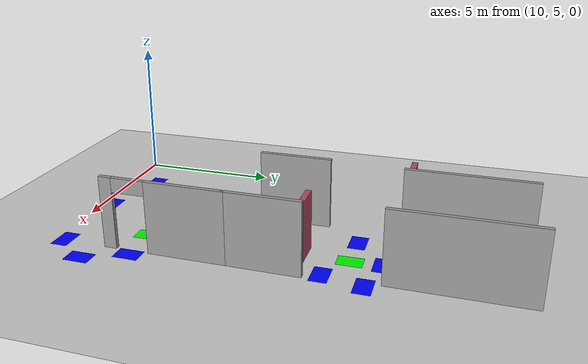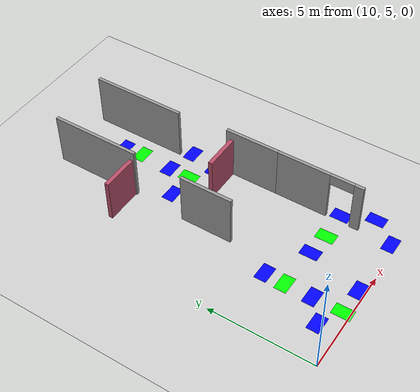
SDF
<sdf version="1.6">
 <world name="default">
  <model name="ground_plane">
   <pose>0 0 0.001 0 -0 0</pose>
   <static>1</static>
   <link name="link">
    <collision name="collision">
     <geometry><plane><normal>0 0 1</normal><size>100 100</size></plane></geometry>
     <surface><friction><ode><mu>100</mu><mu2>50</mu2></ode></friction></surface>
    </collision>
    <visual name="visual">
     <cast_shadows>0</cast_shadows>
     <geometry><plane><normal>0 0 1</normal><size>100 100</size></plane></geometry>
     <material>
      <script><uri>file://media/materials/scripts/gazebo.material</uri><name>Gazebo/Grey</name></script>
     </material>
    </visual>
   </link>
  </model>
  <model name="corridor_6">
   <link name="link">
    <pose>0 0 0.001 0 -0 0</pose>
    <inertial>
     <mass>0.0352517</mass>
     <inertia>
      <ixx>0.00099707</ixx>
      <ixy>0</ixy>
      <ixz>0</ixz>
      <iyy>0.00220147</iyy>
      <iyz>0</iyz>
      <izz>0.0031692</izz>
     </inertia>
     <pose>0 0 0.001 0 -0 0</pose>
    </inertial>
    <visual name="visual">
     <geometry><box><size>0.862743 0.578289 1e-06</size></box></geometry>
     <material>
      <script><name>Gazebo/Grey</name><uri>file://media/materials/scripts/gazebo.material</uri></script>
      <ambient>0 1 0 1</ambient>
      <diffuse>0 1 0 1</diffuse>
      <specular>0 1 0 1</specular>
      <emissive>0 1 0 1</emissive>
      <shader type="vertex"><normal_map>__default__</normal_map></shader>
     </material>
     <pose>0 0 0.001 0 -0 0</pose>
    </visual>
    <collision name="collision">
     <pose>0 0 0.001 0 -0 0</pose>
     <geometry><box><size>0.862743 0.578289 0.000477</size></box></geometry>
     <surface>
      <friction>
       <ode><mu>1</mu><mu2>1</mu2><fdir1>0 0 0</fdir1><slip1>0</slip1><slip2>0</slip2></ode>
       <torsional>
        <coefficient>1</coefficient>
        <patch_radius>0</patch_radius>
        <surface_radius>0</surface_radius>
        <use_patch_radius>1</use_patch_radius>
        <ode><slip>0</slip></ode>
       </torsional>
      </friction>
      <bounce><restitution_coefficient>0</restitution_coefficient><threshold>1e+06</threshold></bounce>
      <contact>
       <collide_without_contact>0</collide_without_contact>
       <collide_without_contact_bitmask>1</collide_without_contact_bitmask>
       <collide_bitmask>1</collide_bitmask>
       <ode>
        <soft_cfm>0</soft_cfm>
        <soft_erp>0.2</soft_erp>
        <kp>1e+13</kp>
        <kd>1</kd>
        <max_vel>0.01</max_vel>
        <min_depth>0</min_depth>
       </ode>
       <bullet>
        <split_impulse>1</split_impulse>
        <split_impulse_penetration_threshold>-0.01</split_impulse_penetration_threshold>
        <soft_cfm>0</soft_cfm>
        <soft_erp>0.2</soft_erp>
        <kp>1e+13</kp>
        <kd>1</kd>
       </bullet>
      </contact>
     </surface>
    </collision>
   </link>
   <static>1</static>
   <pose>15.721 14.7531 0 0 -0 1.58932</pose>
  </model>
  <model name="intersection_11">
   <link name="link">
    <pose>0 0 0.001 0 -0 0</pose>
    <inertial>
     <mass>0.0352517</mass>
     <inertia>
      <ixx>0.000997067</ixx>
      <ixy>0</ixy>
      <ixz>0</ixz>
      <iyy>0.00220147</iyy>
      <iyz>0</iyz>
      <izz>0.0031692</izz>
     </inertia>
     <pose>0 0 0.001 0 -0 0</pose>
    </inertial>
    <visual name="visual">
     <geometry><box><size>0.862743 0.578289 1e-06</size></box></geometry>
     <material>
      <script><name>Gazebo/Grey</name><uri>file://media/materials/scripts/gazebo.material</uri></script>
      <ambient>0 0 1 1</ambient>
      <diffuse>0 0 1 1</diffuse>
      <specular>0 0 1 1</specular>
      <emissive>0 0 1 1</emissive>
      <shader type="vertex"><normal_map>__default__</normal_map></shader>
     </material>
     <pose>0 0 0.001 0 -0 0</pose>
    </visual>
    <collision name="collision">
     <pose>0 0 0.001 0 -0 0</pose>
     <geometry><box><size>0.862743 0.578289 0.000477</size></box></geometry>
     <surface>
      <friction>
       <ode><mu>1</mu><mu2>1</mu2><fdir1>0 0 0</fdir1><slip1>0</slip1><slip2>0</slip2></ode>
       <torsional>
        <coefficient>1</coefficient>
        <patch_radius>0</patch_radius>
        <surface_radius>0</surface_radius>
        <use_patch_radius>1</use_patch_radius>
        <ode><slip>0</slip></ode>
       </torsional>
      </friction>
      <bounce><restitution_coefficient>0</restitution_coefficient><threshold>1e+06</threshold></bounce>
      <contact>
       <collide_without_contact>0</collide_without_contact>
       <collide_without_contact_bitmask>1</collide_without_contact_bitmask>
       <collide_bitmask>1</collide_bitmask>
       <ode>
        <soft_cfm>0</soft_cfm>
        <soft_erp>0.2</soft_erp>
        <kp>1e+13</kp>
        <kd>1</kd>
        <max_vel>0.01</max_vel>
        <min_depth>0</min_depth>
       </ode>
       <bullet>
        <split_impulse>1</split_impulse>
        <split_impulse_penetration_threshold>-0.01</split_impulse_penetration_threshold>
        <soft_cfm>0</soft_cfm>
        <soft_erp>0.2</soft_erp>
        <kp>1e+13</kp>
        <kd>1</kd>
       </bullet>
      </contact>
     </surface>
    </collision>
   </link>
   <static>1</static>
   <pose>15.6951 15.7809 0 0 -0 0</pose>
  </model>
  <model name="intersection_12">
   <link name="link">
    <pose>0 0 0.001 0 -0 0</pose>
    <inertial>
     <mass>0.0352517</mass>
     <inertia>
      <ixx>0.000997067</ixx>
      <ixy>0</ixy>
      <ixz>0</ixz>
      <iyy>0.00220147</iyy>
      <iyz>0</iyz>
      <izz>0.0031692</izz>
     </inertia>
     <pose>0 0 0.001 0 -0 0</pose>
    </inertial>
    <visual name="visual">
     <geometry><box><size>0.862743 0.578289 1e-06</size></box></geometry>
     <material>
      <script><name>Gazebo/Grey</name><uri>file://media/materials/scripts/gazebo.material</uri></script>
      <ambient>0 0 1 1</ambient>
      <diffuse>0 0 1 1</diffuse>
      <specular>0 0 1 1</specular>
      <emissive>0 0 1 1</emissive>
      <shader type="vertex"><normal_map>__default__</normal_map></shader>
     </material>
     <pose>0 0 0.001 0 -0 0</pose>
    </visual>
    <collision name="collision">
     <pose>0 0 0.001 0 -0 0</pose>
     <geometry><box><size>0.862743 0.578289 0.000477</size></box></geometry>
     <surface>
      <friction>
       <ode><mu>1</mu><mu2>1</mu2><fdir1>0 0 0</fdir1><slip1>0</slip1><slip2>0</slip2></ode>
       <torsional>
        <coefficient>1</coefficient>
        <patch_radius>0</patch_radius>
        <surface_radius>0</surface_radius>
        <use_patch_radius>1</use_patch_radius>
        <ode><slip>0</slip></ode>
       </torsional>
      </friction>
      <bounce><restitution_coefficient>0</restitution_coefficient><threshold>1e+06</threshold></bounce>
      <contact>
       <collide_without_contact>0</collide_without_contact>
       <collide_without_contact_bitmask>1</collide_without_contact_bitmask>
       <collide_bitmask>1</collide_bitmask>
       <ode>
        <soft_cfm>0</soft_cfm>
        <soft_erp>0.2</soft_erp>
        <kp>1e+13</kp>
        <kd>1</kd>
        <max_vel>0.01</max_vel>
        <min_depth>0</min_depth>
       </ode>
       <bullet>
        <split_impulse>1</split_impulse>
        <split_impulse_penetration_threshold>-0.01</split_impulse_penetration_threshold>
        <soft_cfm>0</soft_cfm>
        <soft_erp>0.2</soft_erp>
        <kp>1e+13</kp>
        <kd>1</kd>
       </bullet>
      </contact>
     </surface>
    </collision>
   </link>
   <static>1</static>
   <pose>17.3294 7.83092 0 0 -0 1.57418</pose>
  </model>
  <model name="intersection_14">
   <link name="link">
    <pose>0 0 0.001 0 -0 0</pose>
    <inertial>
     <mass>0.0352517</mass>
     <inertia>
      <ixx>0.000997067</ixx>
      <ixy>0</ixy>
      <ixz>0</ixz>
      <iyy>0.00220147</iyy>
      <iyz>0</iyz>
      <izz>0.0031692</izz>
     </inertia>
     <pose>0 0 0.001 0 -0 0</pose>
    </inertial>
    <visual name="visual">
     <geometry><box><size>0.862743 0.578289 1e-06</size></box></geometry>
     <material>
      <script><name>Gazebo/Grey</name><uri>file://media/materials/scripts/gazebo.material</uri></script>
      <ambient>0 0 1 1</ambient>
      <diffuse>0 0 1 1</diffuse>
      <specular>0 0 1 1</specular>
      <emissive>0 0 1 1</emissive>
      <shader type="vertex"><normal_map>__default__</normal_map></shader>
     </material>
     <pose>0 0 0.001 0 -0 0</pose>
    </visual>
    <collision name="collision">
     <pose>0 0 0.001 0 -0 0</pose>
     <geometry><box><size>0.862743 0.578289 0.000477</size></box></geometry>
     <surface>
      <friction>
       <ode><mu>1</mu><mu2>1</mu2><fdir1>0 0 0</fdir1><slip1>0</slip1><slip2>0</slip2></ode>
       <torsional>
        <coefficient>1</coefficient>
        <patch_radius>0</patch_radius>
        <surface_radius>0</surface_radius>
        <use_patch_radius>1</use_patch_radius>
        <ode><slip>0</slip></ode>
       </torsional>
      </friction>
      <bounce><restitution_coefficient>0</restitution_coefficient><threshold>1e+06</threshold></bounce>
      <contact>
       <collide_without_contact>0</collide_without_contact>
       <collide_without_contact_bitmask>1</collide_without_contact_bitmask>
       <collide_bitmask>1</collide_bitmask>
       <ode>
        <soft_cfm>0</soft_cfm>
        <soft_erp>0.2</soft_erp>
        <kp>1e+13</kp>
        <kd>1</kd>
        <max_vel>0.01</max_vel>
        <min_depth>0</min_depth>
       </ode>
       <bullet>
        <split_impulse>1</split_impulse>
        <split_impulse_penetration_threshold>-0.01</split_impulse_penetration_threshold>
        <soft_cfm>0</soft_cfm>
        <soft_erp>0.2</soft_erp>
        <kp>1e+13</kp>
        <kd>1</kd>
       </bullet>
      </contact>
     </surface>
    </collision>
   </link>
   <static>1</static>
   <pose>12.7859 6.73289 0 0 -0 0</pose>
  </model>
  <model name="corridor_8">
   <link name="link">
    <pose>0 0 0.001 0 -0 0</pose>
    <inertial>
     <mass>0.0352517</mass>
     <inertia>
      <ixx>0.00099707</ixx>
      <ixy>0</ixy>
      <ixz>0</ixz>
      <iyy>0.00220147</iyy>
      <iyz>0</iyz>
      <izz>0.0031692</izz>
     </inertia>
     <pose>0 0 0.001 0 -0 0</pose>
    </inertial>
    <visual name="visual">
     <geometry><box><size>0.862743 0.578289 1e-06</size></box></geometry>
     <material>
      <script><name>Gazebo/Grey</name><uri>file://media/materials/scripts/gazebo.material</uri></script>
      <ambient>0 1 0 1</ambient>
      <diffuse>0 1 0 1</diffuse>
      <specular>0 1 0 1</specular>
      <emissive>0 1 0 1</emissive>
      <shader type="vertex"><normal_map>__default__</normal_map></shader>
     </material>
     <pose>0 0 0.001 0 -0 0</pose>
    </visual>
    <collision name="collision">
     <pose>0 0 0.001 0 -0 0</pose>
     <geometry><box><size>0.862743 0.578289 0.000477</size></box></geometry>
     <surface>
      <friction>
       <ode><mu>1</mu><mu2>1</mu2><fdir1>0 0 0</fdir1><slip1>0</slip1><slip2>0</slip2></ode>
       <torsional>
        <coefficient>1</coefficient>
        <patch_radius>0</patch_radius>
        <surface_radius>0</surface_radius>
        <use_patch_radius>1</use_patch_radius>
        <ode><slip>0</slip></ode>
       </torsional>
      </friction>
      <bounce><restitution_coefficient>0</restitution_coefficient><threshold>1e+06</threshold></bounce>
      <contact>
       <collide_without_contact>0</collide_without_contact>
       <collide_without_contact_bitmask>1</collide_without_contact_bitmask>
       <collide_bitmask>1</collide_bitmask>
       <ode>
        <soft_cfm>0</soft_cfm>
        <soft_erp>0.2</soft_erp>
        <kp>1e+13</kp>
        <kd>1</kd>
        <max_vel>0.01</max_vel>
        <min_depth>0</min_depth>
       </ode>
       <bullet>
        <split_impulse>1</split_impulse>
        <split_impulse_penetration_threshold>-0.01</split_impulse_penetration_threshold>
        <soft_cfm>0</soft_cfm>
        <soft_erp>0.2</soft_erp>
        <kp>1e+13</kp>
        <kd>1</kd>
       </bullet>
      </contact>
     </surface>
    </collision>
   </link>
   <static>1</static>
   <pose>12.7756 5.34283 0 0 -0 1.57783</pose>
  </model>
  <model name="intersection_7">
   <link name="link">
    <pose>0 0 0.001 0 -0 0</pose>
    <inertial>
     <mass>0.0352517</mass>
     <inertia>
      <ixx>0.000997067</ixx>
      <ixy>0</ixy>
      <ixz>0</ixz>
      <iyy>0.00220147</iyy>
      <iyz>0</iyz>
      <izz>0.0031692</izz>
     </inertia>
     <pose>0 0 0.001 0 -0 0</pose>
    </inertial>
    <visual name="visual">
     <geometry><box><size>0.862743 0.578289 1e-06</size></box></geometry>
     <material>
      <script><name>Gazebo/Grey</name><uri>file://media/materials/scripts/gazebo.material</uri></script>
      <ambient>0 0 1 1</ambient>
      <diffuse>0 0 1 1</diffuse>
      <specular>0 0 1 1</specular>
      <emissive>0 0 1 1</emissive>
      <shader type="vertex"><normal_map>__default__</normal_map></shader>
     </material>
     <pose>0 0 0.001 0 -0 0</pose>
    </visual>
    <collision name="collision">
     <pose>0 0 0.001 0 -0 0</pose>
     <geometry><box><size>0.862743 0.578289 0.000477</size></box></geometry>
     <surface>
      <friction>
       <ode><mu>1</mu><mu2>1</mu2><fdir1>0 0 0</fdir1><slip1>0</slip1><slip2>0</slip2></ode>
       <torsional>
        <coefficient>1</coefficient>
        <patch_radius>0</patch_radius>
        <surface_radius>0</surface_radius>
        <use_patch_radius>1</use_patch_radius>
        <ode><slip>0</slip></ode>
       </torsional>
      </friction>
      <bounce><restitution_coefficient>0</restitution_coefficient><threshold>1e+06</threshold></bounce>
      <contact>
       <collide_without_contact>0</collide_without_contact>
       <collide_without_contact_bitmask>1</collide_without_contact_bitmask>
       <collide_bitmask>1</collide_bitmask>
       <ode>
        <soft_cfm>0</soft_cfm>
        <soft_erp>0.2</soft_erp>
        <kp>1e+13</kp>
        <kd>1</kd>
        <max_vel>0.01</max_vel>
        <min_depth>0</min_depth>
       </ode>
       <bullet>
        <split_impulse>1</split_impulse>
        <split_impulse_penetration_threshold>-0.01</split_impulse_penetration_threshold>
        <soft_cfm>0</soft_cfm>
        <soft_erp>0.2</soft_erp>
        <kp>1e+13</kp>
        <kd>1</kd>
       </bullet>
      </contact>
     </surface>
    </collision>
   </link>
   <static>1</static>
   <pose>14.0769 5.3223 0 0 -0 0</pose>
  </model>
  <model name="intersection_47">
   <link name="link">
    <pose>0 0 0.001 0 -0 0</pose>
    <inertial>
     <mass>0.0352517</mass>
     <inertia>
      <ixx>0.000997067</ixx>
      <ixy>0</ixy>
      <ixz>0</ixz>
      <iyy>0.00220147</iyy>
      <iyz>0</iyz>
      <izz>0.0031692</izz>
     </inertia>
     <pose>0 0 0.001 0 -0 0</pose>
    </inertial>
    <visual name="visual">
     <geometry><box><size>0.862743 0.578289 1e-06</size></box></geometry>
     <material>
      <script><name>Gazebo/Grey</name><uri>file://media/materials/scripts/gazebo.material</uri></script>
      <ambient>0 0 1 1</ambient>
      <diffuse>0 0 1 1</diffuse>
      <specular>0 0 1 1</specular>
      <emissive>0 0 1 1</emissive>
      <shader type="vertex"><normal_map>__default__</normal_map></shader>
     </material>
     <pose>0 0 0.001 0 -0 0</pose>
    </visual>
    <collision name="collision">
     <pose>0 0 0.001 0 -0 0</pose>
     <geometry><box><size>0.862743 0.578289 0.000477</size></box></geometry>
     <surface>
      <friction>
       <ode><mu>1</mu><mu2>1</mu2><fdir1>0 0 0</fdir1><slip1>0</slip1><slip2>0</slip2></ode>
       <torsional>
        <coefficient>1</coefficient>
        <patch_radius>0</patch_radius>
        <surface_radius>0</surface_radius>
        <use_patch_radius>1</use_patch_radius>
        <ode><slip>0</slip></ode>
       </torsional>
      </friction>
      <bounce><restitution_coefficient>0</restitution_coefficient><threshold>1e+06</threshold></bounce>
      <contact>
       <collide_without_contact>0</collide_without_contact>
       <collide_without_contact_bitmask>1</collide_without_contact_bitmask>
       <collide_bitmask>1</collide_bitmask>
       <ode>
        <soft_cfm>0</soft_cfm>
        <soft_erp>0.2</soft_erp>
        <kp>1e+13</kp>
        <kd>1</kd>
        <max_vel>0.01</max_vel>
        <min_depth>0</min_depth>
       </ode>
       <bullet>
        <split_impulse>1</split_impulse>
        <split_impulse_penetration_threshold>-0.01</split_impulse_penetration_threshold>
        <soft_cfm>0</soft_cfm>
        <soft_erp>0.2</soft_erp>
        <kp>1e+13</kp>
        <kd>1</kd>
       </bullet>
      </contact>
     </surface>
    </collision>
   </link>
   <static>1</static>
   <pose>16.999 5.2849 0 0 -0 0</pose>
  </model>
  <model name="intersection_48">
   <link name="link">
    <pose>0 0 0.001 0 -0 0</pose>
    <inertial>
     <mass>0.0352517</mass>
     <inertia>
      <ixx>0.000997067</ixx>
      <ixy>0</ixy>
      <ixz>0</ixz>
      <iyy>0.00220147</iyy>
      <iyz>0</iyz>
      <izz>0.0031692</izz>
     </inertia>
     <pose>0 0 0.001 0 -0 0</pose>
    </inertial>
    <visual name="visual">
     <geometry><box><size>0.862743 0.578289 1e-06</size></box></geometry>
     <material>
      <script><name>Gazebo/Grey</name><uri>file://media/materials/scripts/gazebo.material</uri></script>
      <ambient>0 0 1 1</ambient>
      <diffuse>0 0 1 1</diffuse>
      <specular>0 0 1 1</specular>
      <emissive>0 0 1 1</emissive>
      <shader type="vertex"><normal_map>__default__</normal_map></shader>
     </material>
     <pose>0 0 0.001 0 -0 0</pose>
    </visual>
    <collision name="collision">
     <pose>0 0 0.001 0 -0 0</pose>
     <geometry><box><size>0.862743 0.578289 0.000477</size></box></geometry>
     <surface>
      <friction>
       <ode><mu>1</mu><mu2>1</mu2><fdir1>0 0 0</fdir1><slip1>0</slip1><slip2>0</slip2></ode>
       <torsional>
        <coefficient>1</coefficient>
        <patch_radius>0</patch_radius>
        <surface_radius>0</surface_radius>
        <use_patch_radius>1</use_patch_radius>
        <ode><slip>0</slip></ode>
       </torsional>
      </friction>
      <bounce><restitution_coefficient>0</restitution_coefficient><threshold>1e+06</threshold></bounce>
      <contact>
       <collide_without_contact>0</collide_without_contact>
       <collide_without_contact_bitmask>1</collide_without_contact_bitmask>
       <collide_bitmask>1</collide_bitmask>
       <ode>
        <soft_cfm>0</soft_cfm>
        <soft_erp>0.2</soft_erp>
        <kp>1e+13</kp>
        <kd>1</kd>
        <max_vel>0.01</max_vel>
        <min_depth>0</min_depth>
       </ode>
       <bullet>
        <split_impulse>1</split_impulse>
        <split_impulse_penetration_threshold>-0.01</split_impulse_penetration_threshold>
        <soft_cfm>0</soft_cfm>
        <soft_erp>0.2</soft_erp>
        <kp>1e+13</kp>
        <kd>1</kd>
       </bullet>
      </contact>
     </surface>
    </collision>
   </link>
   <static>1</static>
   <pose>16.7622 14.0505 0 0 -0 0</pose>
  </model>
  <model name="intersection_49">
   <link name="link">
    <pose>0 0 0.001 0 -0 0</pose>
    <inertial>
     <mass>0.0352517</mass>
     <inertia>
      <ixx>0.000997067</ixx>
      <ixy>0</ixy>
      <ixz>0</ixz>
      <iyy>0.00220147</iyy>
      <iyz>0</iyz>
      <izz>0.0031692</izz>
     </inertia>
     <pose>0 0 0.001 0 -0 0</pose>
    </inertial>
    <visual name="visual">
     <geometry><box><size>0.862743 0.578289 1e-06</size></box></geometry>
     <material>
      <script><name>Gazebo/Grey</name><uri>file://media/materials/scripts/gazebo.material</uri></script>
      <ambient>0 0 1 1</ambient>
      <diffuse>0 0 1 1</diffuse>
      <specular>0 0 1 1</specular>
      <emissive>0 0 1 1</emissive>
      <shader type="vertex"><normal_map>__default__</normal_map></shader>
     </material>
     <pose>0 0 0.001 0 -0 0</pose>
    </visual>
    <collision name="collision">
     <pose>0 0 0.001 0 -0 0</pose>
     <geometry><box><size>0.862743 0.578289 0.000477</size></box></geometry>
     <surface>
      <friction>
       <ode><mu>1</mu><mu2>1</mu2><fdir1>0 0 0</fdir1><slip1>0</slip1><slip2>0</slip2></ode>
       <torsional>
        <coefficient>1</coefficient>
        <patch_radius>0</patch_radius>
        <surface_radius>0</surface_radius>
        <use_patch_radius>1</use_patch_radius>
        <ode><slip>0</slip></ode>
       </torsional>
      </friction>
      <bounce><restitution_coefficient>0</restitution_coefficient><threshold>1e+06</threshold></bounce>
      <contact>
       <collide_without_contact>0</collide_without_contact>
       <collide_without_contact_bitmask>1</collide_without_contact_bitmask>
       <collide_bitmask>1</collide_bitmask>
       <ode>
        <soft_cfm>0</soft_cfm>
        <soft_erp>0.2</soft_erp>
        <kp>1e+13</kp>
        <kd>1</kd>
        <max_vel>0.01</max_vel>
        <min_depth>0</min_depth>
       </ode>
       <bullet>
        <split_impulse>1</split_impulse>
        <split_impulse_penetration_threshold>-0.01</split_impulse_penetration_threshold>
        <soft_cfm>0</soft_cfm>
        <soft_erp>0.2</soft_erp>
        <kp>1e+13</kp>
        <kd>1</kd>
       </bullet>
      </contact>
     </surface>
    </collision>
   </link>
   <static>1</static>
   <pose>14.4469 14.7691 0 0 -0 0</pose>
  </model>
  <model name="Se1_cut">
   <pose>3.62364 13.9276 0 0 -0 0</pose>
   <link name="Wall_13">
    <pose>13.3997 -4.96918 0 0 0 -1.5708</pose>
    <visual name="Wall_13_Visual_0">
     <pose>-0.786431 0 1.25 0 -0 0</pose>
     <geometry><box><size>2.67714 0.15 2.5</size></box></geometry>
     <material>
      <script><uri>file://media/materials/scripts/gazebo.material</uri><name>Gazebo/Grey</name></script>
      <ambient>1 1 1 1</ambient>
     </material>
    </visual>
    <collision name="Wall_13_Collision_0">
     <geometry><box><size>2.67714 0.15 2.5</size></box></geometry>
     <pose>-0.786431 0 1.25 0 -0 0</pose>
    </collision>
    <visual name="Wall_13_Visual_1">
     <pose>1.90422 0 1.25 0 -0 0</pose>
     <geometry><box><size>0.441555 0.15 2.5</size></box></geometry>
     <material>
      <script><uri>file://media/materials/scripts/gazebo.material</uri><name>Gazebo/Grey</name></script>
      <ambient>1 1 1 1</ambient>
     </material>
    </visual>
    <collision name="Wall_13_Collision_1">
     <geometry><box><size>0.441555 0.15 2.5</size></box></geometry>
     <pose>1.90422 0 1.25 0 -0 0</pose>
    </collision>
    <visual name="Wall_13_Visual_2">
     <pose>1.11779 0 2.25 0 -0 0</pose>
     <geometry><box><size>1.13131 0.15 0.5</size></box></geometry>
     <material>
      <script><uri>file://media/materials/scripts/gazebo.material</uri><name>Gazebo/Grey</name></script>
      <ambient>1 1 1 1</ambient>
     </material>
    </visual>
    <collision name="Wall_13_Collision_2">
     <geometry><box><size>1.13131 0.15 0.5</size></box></geometry>
     <pose>1.11779 0 2.25 0 -0 0</pose>
    </collision>
   </link>
   <link name="Wall_16">
    <collision name="Wall_16_Collision">
     <geometry><box><size>2.61111 0.15 2.5</size></box></geometry>
     <pose>0 0 1.25 0 -0 0</pose>
    </collision>
    <visual name="Wall_16_Visual">
     <pose>0 0 1.25 0 -0 0</pose>
     <geometry><box><size>2.61111 0.15 2.5</size></box></geometry>
     <material>
      <script><uri>file://media/materials/scripts/gazebo.material</uri><name>Gazebo/Grey</name></script>
      <ambient>1 1 1 1</ambient>
     </material>
    </visual>
    <pose>13.3997 -1.68863 0 0 0 -1.5708</pose>
   </link>
   <link name="Wall_41">
    <collision name="Wall_41_Collision">
     <geometry><box><size>2.5 0.15 2.5</size></box></geometry>
     <pose>0 0 1.25 0 -0 0</pose>
    </collision>
    <visual name="Wall_41_Visual">
     <pose>0 0 1.25 0 -0 0</pose>
     <geometry><box><size>2.5 0.15 2.5</size></box></geometry>
     <material>
      <script><uri>file://media/materials/scripts/gazebo.material</uri><name>Gazebo/Grey</name></script>
      <ambient>1 1 1 1</ambient>
     </material>
    </visual>
    <pose>9.879 -1.60352 0 0 0 -1.5708</pose>
   </link>
   <link name="Wall_47">
    <collision name="Wall_47_Collision">
     <geometry><box><size>4.5 0.15 2.5</size></box></geometry>
     <pose>0 0 1.25 0 -0 0</pose>
    </collision>
    <visual name="Wall_47_Visual">
     <pose>0 0 1.25 0 -0 0</pose>
     <geometry><box><size>4.5 0.15 2.5</size></box></geometry>
     <material>
      <script><uri>file://media/materials/scripts/gazebo.material</uri><name>Gazebo/Grey</name></script>
      <ambient>1 1 1 1</ambient>
     </material>
    </visual>
    <pose>13.1471 4.23874 0 0 -0 1.5708</pose>
   </link>
   <link name="Wall_63">
    <collision name="Wall_63_Collision">
     <geometry><box><size>4.25 0.15 2.5</size></box></geometry>
     <pose>0 0 1.25 0 -0 0</pose>
    </collision>
    <visual name="Wall_63_Visual">
     <pose>0 0 1.25 0 -0 0</pose>
     <geometry><box><size>4.25 0.15 2.5</size></box></geometry>
     <material>
      <script><uri>file://media/materials/scripts/gazebo.material</uri><name>Gazebo/Grey</name></script>
      <ambient>1 1 1 1</ambient>
     </material>
    </visual>
    <pose>9.99193 4.24479 0 0 0 -1.5708</pose>
   </link>
   <static>1</static>
  </model>
  <model name="doorOutside_5_clone">
   <link name="link">
    <pose>0.155539 -0.366282 0.216958 0 -0 0</pose>
    <inertial>
     <mass>2.13199</mass>
     <inertia>
      <ixx>0.452656</ixx>
      <ixy>0</ixy>
      <ixz>0</ixz>
      <iyy>0.796738</iyy>
      <iyz>0</iyz>
      <izz>0.699414</izz>
     </inertia>
    </inertial>
    <visual name="visual">
     <geometry><box><size>1.71368 0.198843 2.05986</size></box></geometry>
     <material>
      <script><name>Gazebo/Grey</name><uri>file://media/materials/scripts/gazebo.material</uri></script>
      <ambient>0.7 0.3 0.4 1</ambient>
      <diffuse>0.7 0.7 0.7 1</diffuse>
      <specular>0.01 0.01 0.01 1</specular>
      <emissive>0 0 0 1</emissive>
      <shader type="vertex"><normal_map>__default__</normal_map></shader>
      <lighting>0</lighting>
     </material>
    </visual>
    <collision name="collision">
     <geometry><box><size>1.71368 0.198843 2.05986</size></box></geometry>
     <surface>
      <friction>
       <ode><mu>1</mu><mu2>1</mu2><fdir1>0 0 0</fdir1><slip1>0</slip1><slip2>0</slip2></ode>
       <torsional>
        <coefficient>1</coefficient>
        <patch_radius>0</patch_radius>
        <surface_radius>0</surface_radius>
        <use_patch_radius>1</use_patch_radius>
        <ode><slip>0</slip></ode>
       </torsional>
      </friction>
      <bounce><restitution_coefficient>0</restitution_coefficient><threshold>1e+06</threshold></bounce>
      <contact>
       <collide_without_contact>0</collide_without_contact>
       <collide_without_contact_bitmask>1</collide_without_contact_bitmask>
       <collide_bitmask>1</collide_bitmask>
       <ode>
        <soft_cfm>0</soft_cfm>
        <soft_erp>0.2</soft_erp>
        <kp>1e+13</kp>
        <kd>1</kd>
        <max_vel>0.01</max_vel>
        <min_depth>0</min_depth>
       </ode>
       <bullet>
        <split_impulse>1</split_impulse>
        <split_impulse_penetration_threshold>-0.01</split_impulse_penetration_threshold>
        <soft_cfm>0</soft_cfm>
        <soft_erp>0.2</soft_erp>
        <kp>1e+13</kp>
        <kd>1</kd>
       </bullet>
      </contact>
     </surface>
    </collision>
   </link>
   <static>0</static>
   <pose>12.5279 16.5778 0.812969 0 5e-06 9.7e-05</pose>
  </model>
  <model name="doorOutside_5_clone_0">
   <link name="link">
    <pose>0.155539 -0.366282 0.216958 0 -0 0</pose>
    <inertial>
     <mass>2.13199</mass>
     <inertia>
      <ixx>0.452656</ixx>
      <ixy>0</ixy>
      <ixz>0</ixz>
      <iyy>0.796738</iyy>
      <iyz>0</iyz>
      <izz>0.699414</izz>
     </inertia>
    </inertial>
    <visual name="visual">
     <geometry><box><size>1.71368 0.198843 2.05986</size></box></geometry>
     <material>
      <script><name>Gazebo/Grey</name><uri>file://media/materials/scripts/gazebo.material</uri></script>
      <ambient>0.7 0.3 0.4 1</ambient>
      <diffuse>0.7 0.7 0.7 1</diffuse>
      <specular>0.01 0.01 0.01 1</specular>
      <emissive>0 0 0 1</emissive>
      <shader type="vertex"><normal_map>__default__</normal_map></shader>
      <lighting>0</lighting>
     </material>
    </visual>
    <collision name="collision">
     <geometry><box><size>1.71368 0.198843 2.05986</size></box></geometry>
     <surface>
      <friction>
       <ode><mu>1</mu><mu2>1</mu2><fdir1>0 0 0</fdir1><slip1>0</slip1><slip2>0</slip2></ode>
       <torsional>
        <coefficient>1</coefficient>
        <patch_radius>0</patch_radius>
        <surface_radius>0</surface_radius>
        <use_patch_radius>1</use_patch_radius>
        <ode><slip>0</slip></ode>
       </torsional>
      </friction>
      <bounce><restitution_coefficient>0</restitution_coefficient><threshold>1e+06</threshold></bounce>
      <contact>
       <collide_without_contact>0</collide_without_contact>
       <collide_without_contact_bitmask>1</collide_without_contact_bitmask>
       <collide_bitmask>1</collide_bitmask>
       <ode>
        <soft_cfm>0</soft_cfm>
        <soft_erp>0.2</soft_erp>
        <kp>1e+13</kp>
        <kd>1</kd>
        <max_vel>0.01</max_vel>
        <min_depth>0</min_depth>
       </ode>
       <bullet>
        <split_impulse>1</split_impulse>
        <split_impulse_penetration_threshold>-0.01</split_impulse_penetration_threshold>
        <soft_cfm>0</soft_cfm>
        <soft_erp>0.2</soft_erp>
        <kp>1e+13</kp>
        <kd>1</kd>
       </bullet>
      </contact>
     </surface>
    </collision>
   </link>
   <static>0</static>
   <pose>15.9358 13.6208 0.812972 0 -0 0.000321</pose>
  </model>
  <model name="intersection_69">
   <link name="link">
    <pose>0 0 0.001 0 -0 0</pose>
    <inertial>
     <mass>0.0352517</mass>
     <inertia>
      <ixx>0.000997067</ixx>
      <ixy>0</ixy>
      <ixz>0</ixz>
      <iyy>0.00220147</iyy>
      <iyz>0</iyz>
      <izz>0.0031692</izz>
     </inertia>
     <pose>0 0 0.001 0 -0 0</pose>
    </inertial>
    <visual name="visual">
     <geometry><box><size>0.862743 0.578289 1e-06</size></box></geometry>
     <material>
      <script><name>Gazebo/Grey</name><uri>file://media/materials/scripts/gazebo.material</uri></script>
      <ambient>0 0 1 1</ambient>
      <diffuse>0 0 1 1</diffuse>
      <specular>0 0 1 1</specular>
      <emissive>0 0 1 1</emissive>
      <shader type="vertex"><normal_map>__default__</normal_map></shader>
     </material>
     <pose>0 0 0.001 0 -0 0</pose>
    </visual>
    <collision name="collision">
     <pose>0 0 0.001 0 -0 0</pose>
     <geometry><box><size>0.862743 0.578289 0.000477</size></box></geometry>
     <surface>
      <friction>
       <ode><mu>1</mu><mu2>1</mu2><fdir1>0 0 0</fdir1><slip1>0</slip1><slip2>0</slip2></ode>
       <torsional>
        <coefficient>1</coefficient>
        <patch_radius>0</patch_radius>
        <surface_radius>0</surface_radius>
        <use_patch_radius>1</use_patch_radius>
        <ode><slip>0</slip></ode>
       </torsional>
      </friction>
      <bounce><restitution_coefficient>0</restitution_coefficient><threshold>1e+06</threshold></bounce>
      <contact>
       <collide_without_contact>0</collide_without_contact>
       <collide_without_contact_bitmask>1</collide_without_contact_bitmask>
       <collide_bitmask>1</collide_bitmask>
       <ode>
        <soft_cfm>0</soft_cfm>
        <soft_erp>0.2</soft_erp>
        <kp>1e+13</kp>
        <kd>1</kd>
        <max_vel>0.01</max_vel>
        <min_depth>0</min_depth>
       </ode>
       <bullet>
        <split_impulse>1</split_impulse>
        <split_impulse_penetration_threshold>-0.01</split_impulse_penetration_threshold>
        <soft_cfm>0</soft_cfm>
        <soft_erp>0.2</soft_erp>
        <kp>1e+13</kp>
        <kd>1</kd>
       </bullet>
      </contact>
     </surface>
    </collision>
   </link>
   <static>1</static>
   <pose>15.715 18.3637 0 0 -0 0</pose>
  </model>
  <model name="intersection_70">
   <link name="link">
    <pose>0 0 0.001 0 -0 0</pose>
    <inertial>
     <mass>0.0352517</mass>
     <inertia>
      <ixx>0.000997067</ixx>
      <ixy>0</ixy>
      <ixz>0</ixz>
      <iyy>0.00220147</iyy>
      <iyz>0</iyz>
      <izz>0.0031692</izz>
     </inertia>
     <pose>0 0 0.001 0 -0 0</pose>
    </inertial>
    <visual name="visual">
     <geometry><box><size>0.862743 0.578289 1e-06</size></box></geometry>
     <material>
      <script><name>Gazebo/Grey</name><uri>file://media/materials/scripts/gazebo.material</uri></script>
      <ambient>0 0 1 1</ambient>
      <diffuse>0 0 1 1</diffuse>
      <specular>0 0 1 1</specular>
      <emissive>0 0 1 1</emissive>
      <shader type="vertex"><normal_map>__default__</normal_map></shader>
     </material>
     <pose>0 0 0.001 0 -0 0</pose>
    </visual>
    <collision name="collision">
     <pose>0 0 0.001 0 -0 0</pose>
     <geometry><box><size>0.862743 0.578289 0.000477</size></box></geometry>
     <surface>
      <friction>
       <ode><mu>1</mu><mu2>1</mu2><fdir1>0 0 0</fdir1><slip1>0</slip1><slip2>0</slip2></ode>
       <torsional>
        <coefficient>1</coefficient>
        <patch_radius>0</patch_radius>
        <surface_radius>0</surface_radius>
        <use_patch_radius>1</use_patch_radius>
        <ode><slip>0</slip></ode>
       </torsional>
      </friction>
      <bounce><restitution_coefficient>0</restitution_coefficient><threshold>1e+06</threshold></bounce>
      <contact>
       <collide_without_contact>0</collide_without_contact>
       <collide_without_contact_bitmask>1</collide_without_contact_bitmask>
       <collide_bitmask>1</collide_bitmask>
       <ode>
        <soft_cfm>0</soft_cfm>
        <soft_erp>0.2</soft_erp>
        <kp>1e+13</kp>
        <kd>1</kd>
        <max_vel>0.01</max_vel>
        <min_depth>0</min_depth>
       </ode>
       <bullet>
        <split_impulse>1</split_impulse>
        <split_impulse_penetration_threshold>-0.01</split_impulse_penetration_threshold>
        <soft_cfm>0</soft_cfm>
        <soft_erp>0.2</soft_erp>
        <kp>1e+13</kp>
        <kd>1</kd>
       </bullet>
      </contact>
     </surface>
    </collision>
   </link>
   <static>1</static>
   <pose>17.0517 15.4319 0 0 -0 0</pose>
  </model>
  <model name="intersection_12_clone">
   <link name="link">
    <pose>0 0 0.001 0 -0 0</pose>
    <inertial>
     <mass>0.0352517</mass>
     <inertia>
      <ixx>0.000997067</ixx>
      <ixy>0</ixy>
      <ixz>0</ixz>
      <iyy>0.00220147</iyy>
      <iyz>0</iyz>
      <izz>0.0031692</izz>
     </inertia>
     <pose>0 0 0.001 0 -0 0</pose>
    </inertial>
    <visual name="visual">
     <geometry><box><size>0.862743 0.578289 1e-06</size></box></geometry>
     <material>
      <script><name>Gazebo/Grey</name><uri>file://media/materials/scripts/gazebo.material</uri></script>
      <ambient>0 0 1 1</ambient>
      <diffuse>0 0 1 1</diffuse>
      <specular>0 0 1 1</specular>
      <emissive>0 0 1 1</emissive>
      <shader type="vertex"><normal_map>__default__</normal_map></shader>
     </material>
     <pose>0 0 0.001 0 -0 0</pose>
    </visual>
    <collision name="collision">
     <pose>0 0 0.001 0 -0 0</pose>
     <geometry><box><size>0.862743 0.578289 0.000477</size></box></geometry>
     <surface>
      <friction>
       <ode><mu>1</mu><mu2>1</mu2><fdir1>0 0 0</fdir1><slip1>0</slip1><slip2>0</slip2></ode>
       <torsional>
        <coefficient>1</coefficient>
        <patch_radius>0</patch_radius>
        <surface_radius>0</surface_radius>
        <use_patch_radius>1</use_patch_radius>
        <ode><slip>0</slip></ode>
       </torsional>
      </friction>
      <bounce><restitution_coefficient>0</restitution_coefficient><threshold>1e+06</threshold></bounce>
      <contact>
       <collide_without_contact>0</collide_without_contact>
       <collide_without_contact_bitmask>1</collide_without_contact_bitmask>
       <collide_bitmask>1</collide_bitmask>
       <ode>
        <soft_cfm>0</soft_cfm>
        <soft_erp>0.2</soft_erp>
        <kp>1e+13</kp>
        <kd>1</kd>
        <max_vel>0.01</max_vel>
        <min_depth>0</min_depth>
       </ode>
       <bullet>
        <split_impulse>1</split_impulse>
        <split_impulse_penetration_threshold>-0.01</split_impulse_penetration_threshold>
        <soft_cfm>0</soft_cfm>
        <soft_erp>0.2</soft_erp>
        <kp>1e+13</kp>
        <kd>1</kd>
       </bullet>
      </contact>
     </surface>
    </collision>
   </link>
   <static>1</static>
   <pose>14.7806 7.92572 0 0 -0 1.57418</pose>
  </model>
  <model name="intersection_12_clone_0">
   <link name="link">
    <pose>0 0 0.001 0 -0 0</pose>
    <inertial>
     <mass>0.0352517</mass>
     <inertia>
      <ixx>0.000997067</ixx>
      <ixy>0</ixy>
      <ixz>0</ixz>
      <iyy>0.00220147</iyy>
      <iyz>0</iyz>
      <izz>0.0031692</izz>
     </inertia>
     <pose>0 0 0.001 0 -0 0</pose>
    </inertial>
    <visual name="visual">
     <geometry><box><size>0.862743 0.578289 1e-06</size></box></geometry>
     <material>
      <script><name>Gazebo/Grey</name><uri>file://media/materials/scripts/gazebo.material</uri></script>
      <ambient>0 0 1 1</ambient>
      <diffuse>0 0 1 1</diffuse>
      <specular>0 0 1 1</specular>
      <emissive>0 0 1 1</emissive>
      <shader type="vertex"><normal_map>__default__</normal_map></shader>
     </material>
     <pose>0 0 0.001 0 -0 0</pose>
    </visual>
    <collision name="collision">
     <pose>0 0 0.001 0 -0 0</pose>
     <geometry><box><size>0.862743 0.578289 0.000477</size></box></geometry>
     <surface>
      <friction>
       <ode><mu>1</mu><mu2>1</mu2><fdir1>0 0 0</fdir1><slip1>0</slip1><slip2>0</slip2></ode>
       <torsional>
        <coefficient>1</coefficient>
        <patch_radius>0</patch_radius>
        <surface_radius>0</surface_radius>
        <use_patch_radius>1</use_patch_radius>
        <ode><slip>0</slip></ode>
       </torsional>
      </friction>
      <bounce><restitution_coefficient>0</restitution_coefficient><threshold>1e+06</threshold></bounce>
      <contact>
       <collide_without_contact>0</collide_without_contact>
       <collide_without_contact_bitmask>1</collide_without_contact_bitmask>
       <collide_bitmask>1</collide_bitmask>
       <ode>
        <soft_cfm>0</soft_cfm>
        <soft_erp>0.2</soft_erp>
        <kp>1e+13</kp>
        <kd>1</kd>
        <max_vel>0.01</max_vel>
        <min_depth>0</min_depth>
       </ode>
       <bullet>
        <split_impulse>1</split_impulse>
        <split_impulse_penetration_threshold>-0.01</split_impulse_penetration_threshold>
        <soft_cfm>0</soft_cfm>
        <soft_erp>0.2</soft_erp>
        <kp>1e+13</kp>
        <kd>1</kd>
       </bullet>
      </contact>
     </surface>
    </collision>
   </link>
   <static>1</static>
   <pose>17.935 6.41698 0 0 -0 1.57418</pose>
  </model>
  <model name="intersection_71">
   <link name="link">
    <pose>0 0 0.001 0 -0 0</pose>
    <inertial>
     <mass>0.0352517</mass>
     <inertia>
      <ixx>0.000997067</ixx>
      <ixy>0</ixy>
      <ixz>0</ixz>
      <iyy>0.00220147</iyy>
      <iyz>0</iyz>
      <izz>0.0031692</izz>
     </inertia>
     <pose>0 0 0.001 0 -0 0</pose>
    </inertial>
    <visual name="visual">
     <geometry><box><size>0.862743 0.578289 1e-06</size></box></geometry>
     <material>
      <script><name>Gazebo/Grey</name><uri>file://media/materials/scripts/gazebo.material</uri></script>
      <ambient>0 0 1 1</ambient>
      <diffuse>0 0 1 1</diffuse>
      <specular>0 0 1 1</specular>
      <emissive>0 0 1 1</emissive>
      <shader type="vertex"><normal_map>__default__</normal_map></shader>
     </material>
     <pose>0 0 0.001 0 -0 0</pose>
    </visual>
    <collision name="collision">
     <pose>0 0 0.001 0 -0 0</pose>
     <geometry><box><size>0.862743 0.578289 0.000477</size></box></geometry>
     <surface>
      <friction>
       <ode><mu>1</mu><mu2>1</mu2><fdir1>0 0 0</fdir1><slip1>0</slip1><slip2>0</slip2></ode>
       <torsional>
        <coefficient>1</coefficient>
        <patch_radius>0</patch_radius>
        <surface_radius>0</surface_radius>
        <use_patch_radius>1</use_patch_radius>
        <ode><slip>0</slip></ode>
       </torsional>
      </friction>
      <bounce><restitution_coefficient>0</restitution_coefficient><threshold>1e+06</threshold></bounce>
      <contact>
       <collide_without_contact>0</collide_without_contact>
       <collide_without_contact_bitmask>1</collide_without_contact_bitmask>
       <collide_bitmask>1</collide_bitmask>
       <ode>
        <soft_cfm>0</soft_cfm>
        <soft_erp>0.2</soft_erp>
        <kp>1e+13</kp>
        <kd>1</kd>
        <max_vel>0.01</max_vel>
        <min_depth>0</min_depth>
       </ode>
       <bullet>
        <split_impulse>1</split_impulse>
        <split_impulse_penetration_threshold>-0.01</split_impulse_penetration_threshold>
        <soft_cfm>0</soft_cfm>
        <soft_erp>0.2</soft_erp>
        <kp>1e+13</kp>
        <kd>1</kd>
       </bullet>
      </contact>
     </surface>
    </collision>
   </link>
   <static>1</static>
   <pose>12.8093 8.98436 0 0 -0 0</pose>
  </model>
  <model name="intersection_72">
   <link name="link">
    <pose>0 0 0.001 0 -0 0</pose>
    <inertial>
     <mass>0.0352517</mass>
     <inertia>
      <ixx>0.000997067</ixx>
      <ixy>0</ixy>
      <ixz>0</ixz>
      <iyy>0.00220147</iyy>
      <iyz>0</iyz>
      <izz>0.0031692</izz>
     </inertia>
     <pose>0 0 0.001 0 -0 0</pose>
    </inertial>
    <visual name="visual">
     <geometry><box><size>0.862743 0.578289 1e-06</size></box></geometry>
     <material>
      <script><name>Gazebo/Grey</name><uri>file://media/materials/scripts/gazebo.material</uri></script>
      <ambient>0 0 1 1</ambient>
      <diffuse>0 0 1 1</diffuse>
      <specular>0 0 1 1</specular>
      <emissive>0 0 1 1</emissive>
      <shader type="vertex"><normal_map>__default__</normal_map></shader>
     </material>
     <pose>0 0 0.001 0 -0 0</pose>
    </visual>
    <collision name="collision">
     <pose>0 0 0.001 0 -0 0</pose>
     <geometry><box><size>0.862743 0.578289 0.000477</size></box></geometry>
     <surface>
      <friction>
       <ode><mu>1</mu><mu2>1</mu2><fdir1>0 0 0</fdir1><slip1>0</slip1><slip2>0</slip2></ode>
       <torsional>
        <coefficient>1</coefficient>
        <patch_radius>0</patch_radius>
        <surface_radius>0</surface_radius>
        <use_patch_radius>1</use_patch_radius>
        <ode><slip>0</slip></ode>
       </torsional>
      </friction>
      <bounce><restitution_coefficient>0</restitution_coefficient><threshold>1e+06</threshold></bounce>
      <contact>
       <collide_without_contact>0</collide_without_contact>
       <collide_without_contact_bitmask>1</collide_without_contact_bitmask>
       <collide_bitmask>1</collide_bitmask>
       <ode>
        <soft_cfm>0</soft_cfm>
        <soft_erp>0.2</soft_erp>
        <kp>1e+13</kp>
        <kd>1</kd>
        <max_vel>0.01</max_vel>
        <min_depth>0</min_depth>
       </ode>
       <bullet>
        <split_impulse>1</split_impulse>
        <split_impulse_penetration_threshold>-0.01</split_impulse_penetration_threshold>
        <soft_cfm>0</soft_cfm>
        <soft_erp>0.2</soft_erp>
        <kp>1e+13</kp>
        <kd>1</kd>
       </bullet>
      </contact>
     </surface>
    </collision>
   </link>
   <static>1</static>
   <pose>11.7517 5.94614 0 0 -0 0</pose>
  </model>
  <model name="corridor_0_clone_11">
   <link name="link">
    <pose>0 0 0.001 0 -0 0</pose>
    <inertial>
     <mass>0.0352517</mass>
     <inertia>
      <ixx>0.00099707</ixx>
      <ixy>0</ixy>
      <ixz>0</ixz>
      <iyy>0.00220147</iyy>
      <iyz>0</iyz>
      <izz>0.0031692</izz>
     </inertia>
     <pose>0 0 0.001 0 -0 0</pose>
    </inertial>
    <visual name="visual">
     <geometry><box><size>0.862743 0.578289 1e-06</size></box></geometry>
     <material>
      <script><name>Gazebo/Grey</name><uri>file://media/materials/scripts/gazebo.material</uri></script>
      <ambient>0 1 0 1</ambient>
      <diffuse>0 1 0 1</diffuse>
      <specular>0 1 0 1</specular>
      <emissive>0 1 0 1</emissive>
      <shader type="vertex"><normal_map>__default__</normal_map></shader>
     </material>
     <pose>0 0 0.001 0 -0 0</pose>
    </visual>
    <collision name="collision">
     <pose>0 0 0.001 0 -0 0</pose>
     <geometry><box><size>0.862743 0.578289 0.000477</size></box></geometry>
     <surface>
      <friction>
       <ode><mu>1</mu><mu2>1</mu2><fdir1>0 0 0</fdir1><slip1>0</slip1><slip2>0</slip2></ode>
       <torsional>
        <coefficient>1</coefficient>
        <patch_radius>0</patch_radius>
        <surface_radius>0</surface_radius>
        <use_patch_radius>1</use_patch_radius>
        <ode><slip>0</slip></ode>
       </torsional>
      </friction>
      <bounce><restitution_coefficient>0</restitution_coefficient><threshold>1e+06</threshold></bounce>
      <contact>
       <collide_without_contact>0</collide_without_contact>
       <collide_without_contact_bitmask>1</collide_without_contact_bitmask>
       <collide_bitmask>1</collide_bitmask>
       <ode>
        <soft_cfm>0</soft_cfm>
        <soft_erp>0.2</soft_erp>
        <kp>1e+13</kp>
        <kd>1</kd>
        <max_vel>0.01</max_vel>
        <min_depth>0</min_depth>
       </ode>
       <bullet>
        <split_impulse>1</split_impulse>
        <split_impulse_penetration_threshold>-0.01</split_impulse_penetration_threshold>
        <soft_cfm>0</soft_cfm>
        <soft_erp>0.2</soft_erp>
        <kp>1e+13</kp>
        <kd>1</kd>
       </bullet>
      </contact>
     </surface>
    </collision>
   </link>
   <static>1</static>
   <pose>15.7711 17.3859 0 0 -0 0</pose>
  </model>
  <model name="corridor_0_clone_12">
   <link name="link">
    <pose>0 0 0.001 0 -0 0</pose>
    <inertial>
     <mass>0.0352517</mass>
     <inertia>
      <ixx>0.00099707</ixx>
      <ixy>0</ixy>
      <ixz>0</ixz>
      <iyy>0.00220147</iyy>
      <iyz>0</iyz>
      <izz>0.0031692</izz>
     </inertia>
     <pose>0 0 0.001 0 -0 0</pose>
    </inertial>
    <visual name="visual">
     <geometry><box><size>0.862743 0.578289 1e-06</size></box></geometry>
     <material>
      <script><name>Gazebo/Grey</name><uri>file://media/materials/scripts/gazebo.material</uri></script>
      <ambient>0 1 0 1</ambient>
      <diffuse>0 1 0 1</diffuse>
      <specular>0 1 0 1</specular>
      <emissive>0 1 0 1</emissive>
      <shader type="vertex"><normal_map>__default__</normal_map></shader>
     </material>
     <pose>0 0 0.001 0 -0 0</pose>
    </visual>
    <collision name="collision">
     <pose>0 0 0.001 0 -0 0</pose>
     <geometry><box><size>0.862743 0.578289 0.000477</size></box></geometry>
     <surface>
      <friction>
       <ode><mu>1</mu><mu2>1</mu2><fdir1>0 0 0</fdir1><slip1>0</slip1><slip2>0</slip2></ode>
       <torsional>
        <coefficient>1</coefficient>
        <patch_radius>0</patch_radius>
        <surface_radius>0</surface_radius>
        <use_patch_radius>1</use_patch_radius>
        <ode><slip>0</slip></ode>
       </torsional>
      </friction>
      <bounce><restitution_coefficient>0</restitution_coefficient><threshold>1e+06</threshold></bounce>
      <contact>
       <collide_without_contact>0</collide_without_contact>
       <collide_without_contact_bitmask>1</collide_without_contact_bitmask>
       <collide_bitmask>1</collide_bitmask>
       <ode>
        <soft_cfm>0</soft_cfm>
        <soft_erp>0.2</soft_erp>
        <kp>1e+13</kp>
        <kd>1</kd>
        <max_vel>0.01</max_vel>
        <min_depth>0</min_depth>
       </ode>
       <bullet>
        <split_impulse>1</split_impulse>
        <split_impulse_penetration_threshold>-0.01</split_impulse_penetration_threshold>
        <soft_cfm>0</soft_cfm>
        <soft_erp>0.2</soft_erp>
        <kp>1e+13</kp>
        <kd>1</kd>
       </bullet>
      </contact>
     </surface>
    </collision>
   </link>
   <static>1</static>
   <pose>12.7714 8.01887 0 0 -0 0</pose>
  </model>
  <model name="corridor_0_clone_13">
   <link name="link">
    <pose>0 0 0.001 0 -0 0</pose>
    <inertial>
     <mass>0.0352517</mass>
     <inertia>
      <ixx>0.00099707</ixx>
      <ixy>0</ixy>
      <ixz>0</ixz>
      <iyy>0.00220147</iyy>
      <iyz>0</iyz>
      <izz>0.0031692</izz>
     </inertia>
     <pose>0 0 0.001 0 -0 0</pose>
    </inertial>
    <visual name="visual">
     <geometry><box><size>0.862743 0.578289 1e-06</size></box></geometry>
     <material>
      <script><name>Gazebo/Grey</name><uri>file://media/materials/scripts/gazebo.material</uri></script>
      <ambient>0 1 0 1</ambient>
      <diffuse>0 1 0 1</diffuse>
      <specular>0 1 0 1</specular>
      <emissive>0 1 0 1</emissive>
      <shader type="vertex"><normal_map>__default__</normal_map></shader>
     </material>
     <pose>0 0 0.001 0 -0 0</pose>
    </visual>
    <collision name="collision">
     <pose>0 0 0.001 0 -0 0</pose>
     <geometry><box><size>0.862743 0.578289 0.000477</size></box></geometry>
     <surface>
      <friction>
       <ode><mu>1</mu><mu2>1</mu2><fdir1>0 0 0</fdir1><slip1>0</slip1><slip2>0</slip2></ode>
       <torsional>
        <coefficient>1</coefficient>
        <patch_radius>0</patch_radius>
        <surface_radius>0</surface_radius>
        <use_patch_radius>1</use_patch_radius>
        <ode><slip>0</slip></ode>
       </torsional>
      </friction>
      <bounce><restitution_coefficient>0</restitution_coefficient><threshold>1e+06</threshold></bounce>
      <contact>
       <collide_without_contact>0</collide_without_contact>
       <collide_without_contact_bitmask>1</collide_without_contact_bitmask>
       <collide_bitmask>1</collide_bitmask>
       <ode>
        <soft_cfm>0</soft_cfm>
        <soft_erp>0.2</soft_erp>
        <kp>1e+13</kp>
        <kd>1</kd>
        <max_vel>0.01</max_vel>
        <min_depth>0</min_depth>
       </ode>
       <bullet>
        <split_impulse>1</split_impulse>
        <split_impulse_penetration_threshold>-0.01</split_impulse_penetration_threshold>
        <soft_cfm>0</soft_cfm>
        <soft_erp>0.2</soft_erp>
        <kp>1e+13</kp>
        <kd>1</kd>
       </bullet>
      </contact>
     </surface>
    </collision>
   </link>
   <static>1</static>
   <pose>15.9359 7.8115 0 0 0 -1.55039</pose>
  </model>
 </world>
</sdf>
